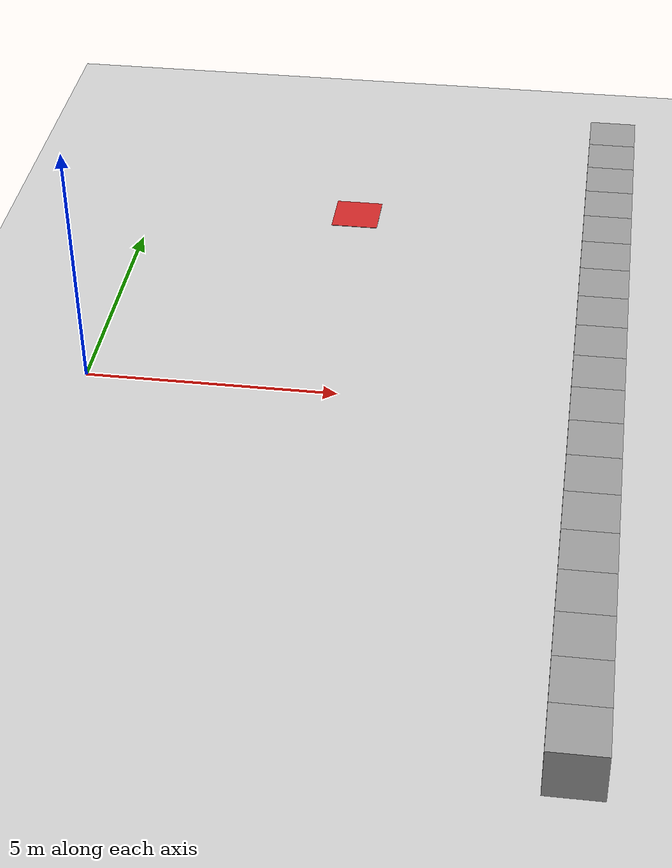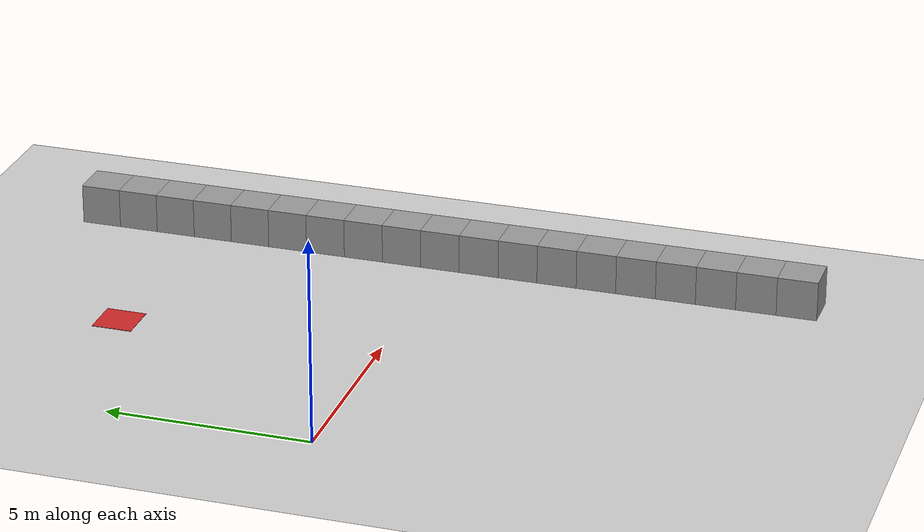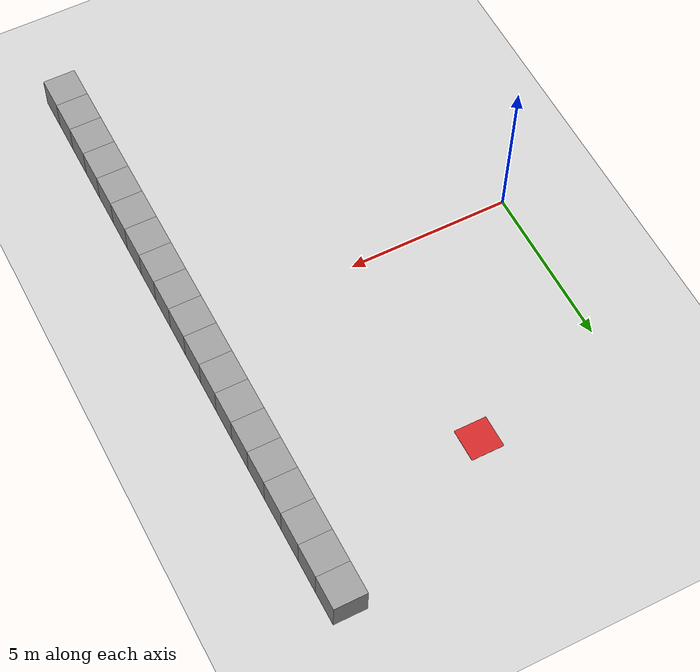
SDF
<sdf version="1.6">
 <world name="default">
  <model name="ground_plane">
   <static>1</static>
   <link name="link">
    <collision name="collision">
     <geometry><plane><normal>0 0 1</normal><size>100 100</size></plane></geometry>
     <surface><friction><ode><mu>100</mu><mu2>50</mu2></ode></friction></surface>
    </collision>
    <visual name="visual">
     <cast_shadows>0</cast_shadows>
     <geometry><plane><normal>0 0 1</normal><size>100 100</size></plane></geometry>
     <material>
      <script><uri>file://media/materials/scripts/gazebo.material</uri><name>Gazebo/Grey</name></script>
     </material>
    </visual>
   </link>
  </model>
  <model name="wall3_0">
   <link name="link">
    <inertial>
     <mass>1</mass>
     <inertia>
      <ixx>0.166667</ixx>
      <ixy>0</ixy>
      <ixz>0</ixz>
      <iyy>0.166667</iyy>
      <iyz>0</iyz>
      <izz>0.166667</izz>
     </inertia>
    </inertial>
    <visual name="visual">
     <geometry><box><size>1 1 1</size></box></geometry>
     <material>
      <script><name>Gazebo/Grey</name><uri>file://media/materials/scripts/gazebo.material</uri></script>
      <ambient>0.3 0.3 0.3 1</ambient>
      <diffuse>0.7 0.7 0.7 1</diffuse>
      <specular>0.01 0.01 0.01 1</specular>
      <emissive>0 0 0 1</emissive>
     </material>
    </visual>
    <collision name="collision">
     <geometry><box><size>1 1 1</size></box></geometry>
     <surface>
      <friction>
       <ode><mu>1</mu><mu2>1</mu2><fdir1>0 0 0</fdir1><slip1>0</slip1><slip2>0</slip2></ode>
       <torsional>
        <coefficient>1</coefficient>
        <patch_radius>0</patch_radius>
        <surface_radius>0</surface_radius>
        <use_patch_radius>1</use_patch_radius>
        <ode><slip>0</slip></ode>
       </torsional>
      </friction>
      <bounce><restitution_coefficient>0</restitution_coefficient><threshold>1e+06</threshold></bounce>
      <contact>
       <collide_without_contact>0</collide_without_contact>
       <collide_without_contact_bitmask>1</collide_without_contact_bitmask>
       <collide_bitmask>1</collide_bitmask>
       <ode>
        <soft_cfm>0</soft_cfm>
        <soft_erp>0.2</soft_erp>
        <kp>1e+13</kp>
        <kd>1</kd>
        <max_vel>0.01</max_vel>
        <min_depth>0</min_depth>
       </ode>
       <bullet>
        <split_impulse>1</split_impulse>
        <split_impulse_penetration_threshold>-0.01</split_impulse_penetration_threshold>
        <soft_cfm>0</soft_cfm>
        <soft_erp>0.2</soft_erp>
        <kp>1e+13</kp>
        <kd>1</kd>
       </bullet>
      </contact>
     </surface>
    </collision>
   </link>
   <link name="link_10">
    <pose>0 -4 0 0 -0 0</pose>
    <inertial>
     <mass>1</mass>
     <inertia>
      <ixx>0.166667</ixx>
      <ixy>0</ixy>
      <ixz>0</ixz>
      <iyy>0.166667</iyy>
      <iyz>0</iyz>
      <izz>0.166667</izz>
     </inertia>
    </inertial>
    <visual name="visual">
     <geometry><box><size>1 1 1</size></box></geometry>
     <material>
      <lighting>1</lighting>
      <script><uri>file://media/materials/scripts/gazebo.material</uri><name>Gazebo/Grey</name></script>
      <ambient>0.3 0.3 0.3 1</ambient>
      <diffuse>0.7 0.7 0.7 1</diffuse>
      <specular>0.01 0.01 0.01 1</specular>
      <emissive>0 0 0 1</emissive>
     </material>
    </visual>
    <collision name="collision">
     <geometry><box><size>1 1 1</size></box></geometry>
     <surface>
      <friction>
       <ode><mu>1</mu><mu2>1</mu2><fdir1>0 0 0</fdir1><slip1>0</slip1><slip2>0</slip2></ode>
       <torsional>
        <coefficient>1</coefficient>
        <patch_radius>0</patch_radius>
        <surface_radius>0</surface_radius>
        <use_patch_radius>1</use_patch_radius>
        <ode><slip>0</slip></ode>
       </torsional>
      </friction>
      <bounce><restitution_coefficient>0</restitution_coefficient><threshold>1e+06</threshold></bounce>
      <contact>
       <collide_without_contact>0</collide_without_contact>
       <collide_without_contact_bitmask>1</collide_without_contact_bitmask>
       <collide_bitmask>1</collide_bitmask>
       <ode>
        <soft_cfm>0</soft_cfm>
        <soft_erp>0.2</soft_erp>
        <kp>1e+13</kp>
        <kd>1</kd>
        <max_vel>0.01</max_vel>
        <min_depth>0</min_depth>
       </ode>
       <bullet>
        <split_impulse>1</split_impulse>
        <split_impulse_penetration_threshold>-0.01</split_impulse_penetration_threshold>
        <soft_cfm>0</soft_cfm>
        <soft_erp>0.2</soft_erp>
        <kp>1e+13</kp>
        <kd>1</kd>
       </bullet>
      </contact>
     </surface>
    </collision>
   </link>
   <link name="link_11">
    <pose>0 -5 0 0 -0 0</pose>
    <inertial>
     <mass>1</mass>
     <inertia>
      <ixx>0.166667</ixx>
      <ixy>0</ixy>
      <ixz>0</ixz>
      <iyy>0.166667</iyy>
      <iyz>0</iyz>
      <izz>0.166667</izz>
     </inertia>
    </inertial>
    <visual name="visual">
     <geometry><box><size>1 1 1</size></box></geometry>
     <material>
      <lighting>1</lighting>
      <script><uri>file://media/materials/scripts/gazebo.material</uri><name>Gazebo/Grey</name></script>
      <ambient>0.3 0.3 0.3 1</ambient>
      <diffuse>0.7 0.7 0.7 1</diffuse>
      <specular>0.01 0.01 0.01 1</specular>
      <emissive>0 0 0 1</emissive>
     </material>
    </visual>
    <collision name="collision">
     <geometry><box><size>1 1 1</size></box></geometry>
     <surface>
      <friction>
       <ode><mu>1</mu><mu2>1</mu2><fdir1>0 0 0</fdir1><slip1>0</slip1><slip2>0</slip2></ode>
       <torsional>
        <coefficient>1</coefficient>
        <patch_radius>0</patch_radius>
        <surface_radius>0</surface_radius>
        <use_patch_radius>1</use_patch_radius>
        <ode><slip>0</slip></ode>
       </torsional>
      </friction>
      <bounce><restitution_coefficient>0</restitution_coefficient><threshold>1e+06</threshold></bounce>
      <contact>
       <collide_without_contact>0</collide_without_contact>
       <collide_without_contact_bitmask>1</collide_without_contact_bitmask>
       <collide_bitmask>1</collide_bitmask>
       <ode>
        <soft_cfm>0</soft_cfm>
        <soft_erp>0.2</soft_erp>
        <kp>1e+13</kp>
        <kd>1</kd>
        <max_vel>0.01</max_vel>
        <min_depth>0</min_depth>
       </ode>
       <bullet>
        <split_impulse>1</split_impulse>
        <split_impulse_penetration_threshold>-0.01</split_impulse_penetration_threshold>
        <soft_cfm>0</soft_cfm>
        <soft_erp>0.2</soft_erp>
        <kp>1e+13</kp>
        <kd>1</kd>
       </bullet>
      </contact>
     </surface>
    </collision>
   </link>
   <link name="link_12">
    <pose>0 -6 0 0 -0 0</pose>
    <inertial>
     <mass>1</mass>
     <inertia>
      <ixx>0.166667</ixx>
      <ixy>0</ixy>
      <ixz>0</ixz>
      <iyy>0.166667</iyy>
      <iyz>0</iyz>
      <izz>0.166667</izz>
     </inertia>
    </inertial>
    <visual name="visual">
     <geometry><box><size>1 1 1</size></box></geometry>
     <material>
      <lighting>1</lighting>
      <script><uri>file://media/materials/scripts/gazebo.material</uri><name>Gazebo/Grey</name></script>
      <ambient>0.3 0.3 0.3 1</ambient>
      <diffuse>0.7 0.7 0.7 1</diffuse>
      <specular>0.01 0.01 0.01 1</specular>
      <emissive>0 0 0 1</emissive>
     </material>
    </visual>
    <collision name="collision">
     <geometry><box><size>1 1 1</size></box></geometry>
     <surface>
      <friction>
       <ode><mu>1</mu><mu2>1</mu2><fdir1>0 0 0</fdir1><slip1>0</slip1><slip2>0</slip2></ode>
       <torsional>
        <coefficient>1</coefficient>
        <patch_radius>0</patch_radius>
        <surface_radius>0</surface_radius>
        <use_patch_radius>1</use_patch_radius>
        <ode><slip>0</slip></ode>
       </torsional>
      </friction>
      <bounce><restitution_coefficient>0</restitution_coefficient><threshold>1e+06</threshold></bounce>
      <contact>
       <collide_without_contact>0</collide_without_contact>
       <collide_without_contact_bitmask>1</collide_without_contact_bitmask>
       <collide_bitmask>1</collide_bitmask>
       <ode>
        <soft_cfm>0</soft_cfm>
        <soft_erp>0.2</soft_erp>
        <kp>1e+13</kp>
        <kd>1</kd>
        <max_vel>0.01</max_vel>
        <min_depth>0</min_depth>
       </ode>
       <bullet>
        <split_impulse>1</split_impulse>
        <split_impulse_penetration_threshold>-0.01</split_impulse_penetration_threshold>
        <soft_cfm>0</soft_cfm>
        <soft_erp>0.2</soft_erp>
        <kp>1e+13</kp>
        <kd>1</kd>
       </bullet>
      </contact>
     </surface>
    </collision>
   </link>
   <link name="link_13">
    <pose>0 -7 0 0 -0 0</pose>
    <inertial>
     <mass>1</mass>
     <inertia>
      <ixx>0.166667</ixx>
      <ixy>0</ixy>
      <ixz>0</ixz>
      <iyy>0.166667</iyy>
      <iyz>0</iyz>
      <izz>0.166667</izz>
     </inertia>
    </inertial>
    <visual name="visual">
     <geometry><box><size>1 1 1</size></box></geometry>
     <material>
      <lighting>1</lighting>
      <script><uri>file://media/materials/scripts/gazebo.material</uri><name>Gazebo/Grey</name></script>
      <ambient>0.3 0.3 0.3 1</ambient>
      <diffuse>0.7 0.7 0.7 1</diffuse>
      <specular>0.01 0.01 0.01 1</specular>
      <emissive>0 0 0 1</emissive>
     </material>
    </visual>
    <collision name="collision">
     <geometry><box><size>1 1 1</size></box></geometry>
     <surface>
      <friction>
       <ode><mu>1</mu><mu2>1</mu2><fdir1>0 0 0</fdir1><slip1>0</slip1><slip2>0</slip2></ode>
       <torsional>
        <coefficient>1</coefficient>
        <patch_radius>0</patch_radius>
        <surface_radius>0</surface_radius>
        <use_patch_radius>1</use_patch_radius>
        <ode><slip>0</slip></ode>
       </torsional>
      </friction>
      <bounce><restitution_coefficient>0</restitution_coefficient><threshold>1e+06</threshold></bounce>
      <contact>
       <collide_without_contact>0</collide_without_contact>
       <collide_without_contact_bitmask>1</collide_without_contact_bitmask>
       <collide_bitmask>1</collide_bitmask>
       <ode>
        <soft_cfm>0</soft_cfm>
        <soft_erp>0.2</soft_erp>
        <kp>1e+13</kp>
        <kd>1</kd>
        <max_vel>0.01</max_vel>
        <min_depth>0</min_depth>
       </ode>
       <bullet>
        <split_impulse>1</split_impulse>
        <split_impulse_penetration_threshold>-0.01</split_impulse_penetration_threshold>
        <soft_cfm>0</soft_cfm>
        <soft_erp>0.2</soft_erp>
        <kp>1e+13</kp>
        <kd>1</kd>
       </bullet>
      </contact>
     </surface>
    </collision>
   </link>
   <link name="link_14">
    <pose>0 -8 0 0 -0 0</pose>
    <inertial>
     <mass>1</mass>
     <inertia>
      <ixx>0.166667</ixx>
      <ixy>0</ixy>
      <ixz>0</ixz>
      <iyy>0.166667</iyy>
      <iyz>0</iyz>
      <izz>0.166667</izz>
     </inertia>
    </inertial>
    <visual name="visual">
     <geometry><box><size>1 1 1</size></box></geometry>
     <material>
      <lighting>1</lighting>
      <script><uri>file://media/materials/scripts/gazebo.material</uri><name>Gazebo/Grey</name></script>
      <ambient>0.3 0.3 0.3 1</ambient>
      <diffuse>0.7 0.7 0.7 1</diffuse>
      <specular>0.01 0.01 0.01 1</specular>
      <emissive>0 0 0 1</emissive>
     </material>
    </visual>
    <collision name="collision">
     <geometry><box><size>1 1 1</size></box></geometry>
     <surface>
      <friction>
       <ode><mu>1</mu><mu2>1</mu2><fdir1>0 0 0</fdir1><slip1>0</slip1><slip2>0</slip2></ode>
       <torsional>
        <coefficient>1</coefficient>
        <patch_radius>0</patch_radius>
        <surface_radius>0</surface_radius>
        <use_patch_radius>1</use_patch_radius>
        <ode><slip>0</slip></ode>
       </torsional>
      </friction>
      <bounce><restitution_coefficient>0</restitution_coefficient><threshold>1e+06</threshold></bounce>
      <contact>
       <collide_without_contact>0</collide_without_contact>
       <collide_without_contact_bitmask>1</collide_without_contact_bitmask>
       <collide_bitmask>1</collide_bitmask>
       <ode>
        <soft_cfm>0</soft_cfm>
        <soft_erp>0.2</soft_erp>
        <kp>1e+13</kp>
        <kd>1</kd>
        <max_vel>0.01</max_vel>
        <min_depth>0</min_depth>
       </ode>
       <bullet>
        <split_impulse>1</split_impulse>
        <split_impulse_penetration_threshold>-0.01</split_impulse_penetration_threshold>
        <soft_cfm>0</soft_cfm>
        <soft_erp>0.2</soft_erp>
        <kp>1e+13</kp>
        <kd>1</kd>
       </bullet>
      </contact>
     </surface>
    </collision>
   </link>
   <link name="link_15">
    <pose>0 1 0 0 -0 0</pose>
    <inertial>
     <mass>1</mass>
     <inertia>
      <ixx>0.166667</ixx>
      <ixy>0</ixy>
      <ixz>0</ixz>
      <iyy>0.166667</iyy>
      <iyz>0</iyz>
      <izz>0.166667</izz>
     </inertia>
    </inertial>
    <visual name="visual">
     <geometry><box><size>1 1 1</size></box></geometry>
     <material>
      <lighting>1</lighting>
      <script><uri>file://media/materials/scripts/gazebo.material</uri><name>Gazebo/Grey</name></script>
      <ambient>0.3 0.3 0.3 1</ambient>
      <diffuse>0.7 0.7 0.7 1</diffuse>
      <specular>0.01 0.01 0.01 1</specular>
      <emissive>0 0 0 1</emissive>
     </material>
    </visual>
    <collision name="collision">
     <geometry><box><size>1 1 1</size></box></geometry>
     <surface>
      <friction>
       <ode><mu>1</mu><mu2>1</mu2><fdir1>0 0 0</fdir1><slip1>0</slip1><slip2>0</slip2></ode>
       <torsional>
        <coefficient>1</coefficient>
        <patch_radius>0</patch_radius>
        <surface_radius>0</surface_radius>
        <use_patch_radius>1</use_patch_radius>
        <ode><slip>0</slip></ode>
       </torsional>
      </friction>
      <bounce><restitution_coefficient>0</restitution_coefficient><threshold>1e+06</threshold></bounce>
      <contact>
       <collide_without_contact>0</collide_without_contact>
       <collide_without_contact_bitmask>1</collide_without_contact_bitmask>
       <collide_bitmask>1</collide_bitmask>
       <ode>
        <soft_cfm>0</soft_cfm>
        <soft_erp>0.2</soft_erp>
        <kp>1e+13</kp>
        <kd>1</kd>
        <max_vel>0.01</max_vel>
        <min_depth>0</min_depth>
       </ode>
       <bullet>
        <split_impulse>1</split_impulse>
        <split_impulse_penetration_threshold>-0.01</split_impulse_penetration_threshold>
        <soft_cfm>0</soft_cfm>
        <soft_erp>0.2</soft_erp>
        <kp>1e+13</kp>
        <kd>1</kd>
       </bullet>
      </contact>
     </surface>
    </collision>
   </link>
   <link name="link_16">
    <pose>0 2 0 0 -0 0</pose>
    <inertial>
     <mass>1</mass>
     <inertia>
      <ixx>0.166667</ixx>
      <ixy>0</ixy>
      <ixz>0</ixz>
      <iyy>0.166667</iyy>
      <iyz>0</iyz>
      <izz>0.166667</izz>
     </inertia>
    </inertial>
    <visual name="visual">
     <geometry><box><size>1 1 1</size></box></geometry>
     <material>
      <lighting>1</lighting>
      <script><uri>file://media/materials/scripts/gazebo.material</uri><name>Gazebo/Grey</name></script>
      <ambient>0.3 0.3 0.3 1</ambient>
      <diffuse>0.7 0.7 0.7 1</diffuse>
      <specular>0.01 0.01 0.01 1</specular>
      <emissive>0 0 0 1</emissive>
     </material>
    </visual>
    <collision name="collision">
     <geometry><box><size>1 1 1</size></box></geometry>
     <surface>
      <friction>
       <ode><mu>1</mu><mu2>1</mu2><fdir1>0 0 0</fdir1><slip1>0</slip1><slip2>0</slip2></ode>
       <torsional>
        <coefficient>1</coefficient>
        <patch_radius>0</patch_radius>
        <surface_radius>0</surface_radius>
        <use_patch_radius>1</use_patch_radius>
        <ode><slip>0</slip></ode>
       </torsional>
      </friction>
      <bounce><restitution_coefficient>0</restitution_coefficient><threshold>1e+06</threshold></bounce>
      <contact>
       <collide_without_contact>0</collide_without_contact>
       <collide_without_contact_bitmask>1</collide_without_contact_bitmask>
       <collide_bitmask>1</collide_bitmask>
       <ode>
        <soft_cfm>0</soft_cfm>
        <soft_erp>0.2</soft_erp>
        <kp>1e+13</kp>
        <kd>1</kd>
        <max_vel>0.01</max_vel>
        <min_depth>0</min_depth>
       </ode>
       <bullet>
        <split_impulse>1</split_impulse>
        <split_impulse_penetration_threshold>-0.01</split_impulse_penetration_threshold>
        <soft_cfm>0</soft_cfm>
        <soft_erp>0.2</soft_erp>
        <kp>1e+13</kp>
        <kd>1</kd>
       </bullet>
      </contact>
     </surface>
    </collision>
   </link>
   <link name="link_17">
    <pose>0 3 0 0 -0 0</pose>
    <inertial>
     <mass>1</mass>
     <inertia>
      <ixx>0.166667</ixx>
      <ixy>0</ixy>
      <ixz>0</ixz>
      <iyy>0.166667</iyy>
      <iyz>0</iyz>
      <izz>0.166667</izz>
     </inertia>
    </inertial>
    <visual name="visual">
     <geometry><box><size>1 1 1</size></box></geometry>
     <material>
      <lighting>1</lighting>
      <script><uri>file://media/materials/scripts/gazebo.material</uri><name>Gazebo/Grey</name></script>
      <ambient>0.3 0.3 0.3 1</ambient>
      <diffuse>0.7 0.7 0.7 1</diffuse>
      <specular>0.01 0.01 0.01 1</specular>
      <emissive>0 0 0 1</emissive>
     </material>
    </visual>
    <collision name="collision">
     <geometry><box><size>1 1 1</size></box></geometry>
     <surface>
      <friction>
       <ode><mu>1</mu><mu2>1</mu2><fdir1>0 0 0</fdir1><slip1>0</slip1><slip2>0</slip2></ode>
       <torsional>
        <coefficient>1</coefficient>
        <patch_radius>0</patch_radius>
        <surface_radius>0</surface_radius>
        <use_patch_radius>1</use_patch_radius>
        <ode><slip>0</slip></ode>
       </torsional>
      </friction>
      <bounce><restitution_coefficient>0</restitution_coefficient><threshold>1e+06</threshold></bounce>
      <contact>
       <collide_without_contact>0</collide_without_contact>
       <collide_without_contact_bitmask>1</collide_without_contact_bitmask>
       <collide_bitmask>1</collide_bitmask>
       <ode>
        <soft_cfm>0</soft_cfm>
        <soft_erp>0.2</soft_erp>
        <kp>1e+13</kp>
        <kd>1</kd>
        <max_vel>0.01</max_vel>
        <min_depth>0</min_depth>
       </ode>
       <bullet>
        <split_impulse>1</split_impulse>
        <split_impulse_penetration_threshold>-0.01</split_impulse_penetration_threshold>
        <soft_cfm>0</soft_cfm>
        <soft_erp>0.2</soft_erp>
        <kp>1e+13</kp>
        <kd>1</kd>
       </bullet>
      </contact>
     </surface>
    </collision>
   </link>
   <link name="link_18">
    <pose>0 4 0 0 -0 0</pose>
    <inertial>
     <mass>1</mass>
     <inertia>
      <ixx>0.166667</ixx>
      <ixy>0</ixy>
      <ixz>0</ixz>
      <iyy>0.166667</iyy>
      <iyz>0</iyz>
      <izz>0.166667</izz>
     </inertia>
    </inertial>
    <visual name="visual">
     <geometry><box><size>1 1 1</size></box></geometry>
     <material>
      <lighting>1</lighting>
      <script><uri>file://media/materials/scripts/gazebo.material</uri><name>Gazebo/Grey</name></script>
      <ambient>0.3 0.3 0.3 1</ambient>
      <diffuse>0.7 0.7 0.7 1</diffuse>
      <specular>0.01 0.01 0.01 1</specular>
      <emissive>0 0 0 1</emissive>
     </material>
    </visual>
    <collision name="collision">
     <geometry><box><size>1 1 1</size></box></geometry>
     <surface>
      <friction>
       <ode><mu>1</mu><mu2>1</mu2><fdir1>0 0 0</fdir1><slip1>0</slip1><slip2>0</slip2></ode>
       <torsional>
        <coefficient>1</coefficient>
        <patch_radius>0</patch_radius>
        <surface_radius>0</surface_radius>
        <use_patch_radius>1</use_patch_radius>
        <ode><slip>0</slip></ode>
       </torsional>
      </friction>
      <bounce><restitution_coefficient>0</restitution_coefficient><threshold>1e+06</threshold></bounce>
      <contact>
       <collide_without_contact>0</collide_without_contact>
       <collide_without_contact_bitmask>1</collide_without_contact_bitmask>
       <collide_bitmask>1</collide_bitmask>
       <ode>
        <soft_cfm>0</soft_cfm>
        <soft_erp>0.2</soft_erp>
        <kp>1e+13</kp>
        <kd>1</kd>
        <max_vel>0.01</max_vel>
        <min_depth>0</min_depth>
       </ode>
       <bullet>
        <split_impulse>1</split_impulse>
        <split_impulse_penetration_threshold>-0.01</split_impulse_penetration_threshold>
        <soft_cfm>0</soft_cfm>
        <soft_erp>0.2</soft_erp>
        <kp>1e+13</kp>
        <kd>1</kd>
       </bullet>
      </contact>
     </surface>
    </collision>
   </link>
   <link name="link_19">
    <pose>0 5 0 0 -0 0</pose>
    <inertial>
     <mass>1</mass>
     <inertia>
      <ixx>0.166667</ixx>
      <ixy>0</ixy>
      <ixz>0</ixz>
      <iyy>0.166667</iyy>
      <iyz>0</iyz>
      <izz>0.166667</izz>
     </inertia>
    </inertial>
    <visual name="visual">
     <geometry><box><size>1 1 1</size></box></geometry>
     <material>
      <lighting>1</lighting>
      <script><uri>file://media/materials/scripts/gazebo.material</uri><name>Gazebo/Grey</name></script>
      <ambient>0.3 0.3 0.3 1</ambient>
      <diffuse>0.7 0.7 0.7 1</diffuse>
      <specular>0.01 0.01 0.01 1</specular>
      <emissive>0 0 0 1</emissive>
     </material>
    </visual>
    <collision name="collision">
     <geometry><box><size>1 1 1</size></box></geometry>
     <surface>
      <friction>
       <ode><mu>1</mu><mu2>1</mu2><fdir1>0 0 0</fdir1><slip1>0</slip1><slip2>0</slip2></ode>
       <torsional>
        <coefficient>1</coefficient>
        <patch_radius>0</patch_radius>
        <surface_radius>0</surface_radius>
        <use_patch_radius>1</use_patch_radius>
        <ode><slip>0</slip></ode>
       </torsional>
      </friction>
      <bounce><restitution_coefficient>0</restitution_coefficient><threshold>1e+06</threshold></bounce>
      <contact>
       <collide_without_contact>0</collide_without_contact>
       <collide_without_contact_bitmask>1</collide_without_contact_bitmask>
       <collide_bitmask>1</collide_bitmask>
       <ode>
        <soft_cfm>0</soft_cfm>
        <soft_erp>0.2</soft_erp>
        <kp>1e+13</kp>
        <kd>1</kd>
        <max_vel>0.01</max_vel>
        <min_depth>0</min_depth>
       </ode>
       <bullet>
        <split_impulse>1</split_impulse>
        <split_impulse_penetration_threshold>-0.01</split_impulse_penetration_threshold>
        <soft_cfm>0</soft_cfm>
        <soft_erp>0.2</soft_erp>
        <kp>1e+13</kp>
        <kd>1</kd>
       </bullet>
      </contact>
     </surface>
    </collision>
   </link>
   <link name="link_20">
    <pose>0 6 0 0 -0 0</pose>
    <inertial>
     <mass>1</mass>
     <inertia>
      <ixx>0.166667</ixx>
      <ixy>0</ixy>
      <ixz>0</ixz>
      <iyy>0.166667</iyy>
      <iyz>0</iyz>
      <izz>0.166667</izz>
     </inertia>
    </inertial>
    <visual name="visual">
     <geometry><box><size>1 1 1</size></box></geometry>
     <material>
      <lighting>1</lighting>
      <script><uri>file://media/materials/scripts/gazebo.material</uri><name>Gazebo/Grey</name></script>
      <ambient>0.3 0.3 0.3 1</ambient>
      <diffuse>0.7 0.7 0.7 1</diffuse>
      <specular>0.01 0.01 0.01 1</specular>
      <emissive>0 0 0 1</emissive>
     </material>
    </visual>
    <collision name="collision">
     <geometry><box><size>1 1 1</size></box></geometry>
     <surface>
      <friction>
       <ode><mu>1</mu><mu2>1</mu2><fdir1>0 0 0</fdir1><slip1>0</slip1><slip2>0</slip2></ode>
       <torsional>
        <coefficient>1</coefficient>
        <patch_radius>0</patch_radius>
        <surface_radius>0</surface_radius>
        <use_patch_radius>1</use_patch_radius>
        <ode><slip>0</slip></ode>
       </torsional>
      </friction>
      <bounce><restitution_coefficient>0</restitution_coefficient><threshold>1e+06</threshold></bounce>
      <contact>
       <collide_without_contact>0</collide_without_contact>
       <collide_without_contact_bitmask>1</collide_without_contact_bitmask>
       <collide_bitmask>1</collide_bitmask>
       <ode>
        <soft_cfm>0</soft_cfm>
        <soft_erp>0.2</soft_erp>
        <kp>1e+13</kp>
        <kd>1</kd>
        <max_vel>0.01</max_vel>
        <min_depth>0</min_depth>
       </ode>
       <bullet>
        <split_impulse>1</split_impulse>
        <split_impulse_penetration_threshold>-0.01</split_impulse_penetration_threshold>
        <soft_cfm>0</soft_cfm>
        <soft_erp>0.2</soft_erp>
        <kp>1e+13</kp>
        <kd>1</kd>
       </bullet>
      </contact>
     </surface>
    </collision>
   </link>
   <link name="link_21">
    <pose>0 7 0 0 -0 0</pose>
    <inertial>
     <mass>1</mass>
     <inertia>
      <ixx>0.166667</ixx>
      <ixy>0</ixy>
      <ixz>0</ixz>
      <iyy>0.166667</iyy>
      <iyz>0</iyz>
      <izz>0.166667</izz>
     </inertia>
    </inertial>
    <visual name="visual">
     <geometry><box><size>1 1 1</size></box></geometry>
     <material>
      <lighting>1</lighting>
      <script><uri>file://media/materials/scripts/gazebo.material</uri><name>Gazebo/Grey</name></script>
      <ambient>0.3 0.3 0.3 1</ambient>
      <diffuse>0.7 0.7 0.7 1</diffuse>
      <specular>0.01 0.01 0.01 1</specular>
      <emissive>0 0 0 1</emissive>
     </material>
    </visual>
    <collision name="collision">
     <geometry><box><size>1 1 1</size></box></geometry>
     <surface>
      <friction>
       <ode><mu>1</mu><mu2>1</mu2><fdir1>0 0 0</fdir1><slip1>0</slip1><slip2>0</slip2></ode>
       <torsional>
        <coefficient>1</coefficient>
        <patch_radius>0</patch_radius>
        <surface_radius>0</surface_radius>
        <use_patch_radius>1</use_patch_radius>
        <ode><slip>0</slip></ode>
       </torsional>
      </friction>
      <bounce><restitution_coefficient>0</restitution_coefficient><threshold>1e+06</threshold></bounce>
      <contact>
       <collide_without_contact>0</collide_without_contact>
       <collide_without_contact_bitmask>1</collide_without_contact_bitmask>
       <collide_bitmask>1</collide_bitmask>
       <ode>
        <soft_cfm>0</soft_cfm>
        <soft_erp>0.2</soft_erp>
        <kp>1e+13</kp>
        <kd>1</kd>
        <max_vel>0.01</max_vel>
        <min_depth>0</min_depth>
       </ode>
       <bullet>
        <split_impulse>1</split_impulse>
        <split_impulse_penetration_threshold>-0.01</split_impulse_penetration_threshold>
        <soft_cfm>0</soft_cfm>
        <soft_erp>0.2</soft_erp>
        <kp>1e+13</kp>
        <kd>1</kd>
       </bullet>
      </contact>
     </surface>
    </collision>
   </link>
   <link name="link_22">
    <pose>0 8 0 0 -0 0</pose>
    <inertial>
     <mass>1</mass>
     <inertia>
      <ixx>0.166667</ixx>
      <ixy>0</ixy>
      <ixz>0</ixz>
      <iyy>0.166667</iyy>
      <iyz>0</iyz>
      <izz>0.166667</izz>
     </inertia>
    </inertial>
    <visual name="visual">
     <geometry><box><size>1 1 1</size></box></geometry>
     <material>
      <lighting>1</lighting>
      <script><uri>file://media/materials/scripts/gazebo.material</uri><name>Gazebo/Grey</name></script>
      <ambient>0.3 0.3 0.3 1</ambient>
      <diffuse>0.7 0.7 0.7 1</diffuse>
      <specular>0.01 0.01 0.01 1</specular>
      <emissive>0 0 0 1</emissive>
     </material>
    </visual>
    <collision name="collision">
     <geometry><box><size>1 1 1</size></box></geometry>
     <surface>
      <friction>
       <ode><mu>1</mu><mu2>1</mu2><fdir1>0 0 0</fdir1><slip1>0</slip1><slip2>0</slip2></ode>
       <torsional>
        <coefficient>1</coefficient>
        <patch_radius>0</patch_radius>
        <surface_radius>0</surface_radius>
        <use_patch_radius>1</use_patch_radius>
        <ode><slip>0</slip></ode>
       </torsional>
      </friction>
      <bounce><restitution_coefficient>0</restitution_coefficient><threshold>1e+06</threshold></bounce>
      <contact>
       <collide_without_contact>0</collide_without_contact>
       <collide_without_contact_bitmask>1</collide_without_contact_bitmask>
       <collide_bitmask>1</collide_bitmask>
       <ode>
        <soft_cfm>0</soft_cfm>
        <soft_erp>0.2</soft_erp>
        <kp>1e+13</kp>
        <kd>1</kd>
        <max_vel>0.01</max_vel>
        <min_depth>0</min_depth>
       </ode>
       <bullet>
        <split_impulse>1</split_impulse>
        <split_impulse_penetration_threshold>-0.01</split_impulse_penetration_threshold>
        <soft_cfm>0</soft_cfm>
        <soft_erp>0.2</soft_erp>
        <kp>1e+13</kp>
        <kd>1</kd>
       </bullet>
      </contact>
     </surface>
    </collision>
   </link>
   <link name="link_23">
    <pose>0 9 0 0 -0 0</pose>
    <inertial>
     <mass>1</mass>
     <inertia>
      <ixx>0.166667</ixx>
      <ixy>0</ixy>
      <ixz>0</ixz>
      <iyy>0.166667</iyy>
      <iyz>0</iyz>
      <izz>0.166667</izz>
     </inertia>
    </inertial>
    <visual name="visual">
     <geometry><box><size>1 1 1</size></box></geometry>
     <material>
      <lighting>1</lighting>
      <script><uri>file://media/materials/scripts/gazebo.material</uri><name>Gazebo/Grey</name></script>
      <ambient>0.3 0.3 0.3 1</ambient>
      <diffuse>0.7 0.7 0.7 1</diffuse>
      <specular>0.01 0.01 0.01 1</specular>
      <emissive>0 0 0 1</emissive>
     </material>
    </visual>
    <collision name="collision">
     <geometry><box><size>1 1 1</size></box></geometry>
     <surface>
      <friction>
       <ode><mu>1</mu><mu2>1</mu2><fdir1>0 0 0</fdir1><slip1>0</slip1><slip2>0</slip2></ode>
       <torsional>
        <coefficient>1</coefficient>
        <patch_radius>0</patch_radius>
        <surface_radius>0</surface_radius>
        <use_patch_radius>1</use_patch_radius>
        <ode><slip>0</slip></ode>
       </torsional>
      </friction>
      <bounce><restitution_coefficient>0</restitution_coefficient><threshold>1e+06</threshold></bounce>
      <contact>
       <collide_without_contact>0</collide_without_contact>
       <collide_without_contact_bitmask>1</collide_without_contact_bitmask>
       <collide_bitmask>1</collide_bitmask>
       <ode>
        <soft_cfm>0</soft_cfm>
        <soft_erp>0.2</soft_erp>
        <kp>1e+13</kp>
        <kd>1</kd>
        <max_vel>0.01</max_vel>
        <min_depth>0</min_depth>
       </ode>
       <bullet>
        <split_impulse>1</split_impulse>
        <split_impulse_penetration_threshold>-0.01</split_impulse_penetration_threshold>
        <soft_cfm>0</soft_cfm>
        <soft_erp>0.2</soft_erp>
        <kp>1e+13</kp>
        <kd>1</kd>
       </bullet>
      </contact>
     </surface>
    </collision>
   </link>
   <link name="link_24">
    <pose>0 -9 0 0 -0 0</pose>
    <inertial>
     <mass>1</mass>
     <inertia>
      <ixx>0.166667</ixx>
      <ixy>0</ixy>
      <ixz>0</ixz>
      <iyy>0.166667</iyy>
      <iyz>0</iyz>
      <izz>0.166667</izz>
     </inertia>
    </inertial>
    <visual name="visual">
     <geometry><box><size>1 1 1</size></box></geometry>
     <material>
      <lighting>1</lighting>
      <script><uri>file://media/materials/scripts/gazebo.material</uri><name>Gazebo/Grey</name></script>
      <ambient>0.3 0.3 0.3 1</ambient>
      <diffuse>0.7 0.7 0.7 1</diffuse>
      <specular>0.01 0.01 0.01 1</specular>
      <emissive>0 0 0 1</emissive>
     </material>
    </visual>
    <collision name="collision">
     <geometry><box><size>1 1 1</size></box></geometry>
     <surface>
      <friction>
       <ode><mu>1</mu><mu2>1</mu2><fdir1>0 0 0</fdir1><slip1>0</slip1><slip2>0</slip2></ode>
       <torsional>
        <coefficient>1</coefficient>
        <patch_radius>0</patch_radius>
        <surface_radius>0</surface_radius>
        <use_patch_radius>1</use_patch_radius>
        <ode><slip>0</slip></ode>
       </torsional>
      </friction>
      <bounce><restitution_coefficient>0</restitution_coefficient><threshold>1e+06</threshold></bounce>
      <contact>
       <collide_without_contact>0</collide_without_contact>
       <collide_without_contact_bitmask>1</collide_without_contact_bitmask>
       <collide_bitmask>1</collide_bitmask>
       <ode>
        <soft_cfm>0</soft_cfm>
        <soft_erp>0.2</soft_erp>
        <kp>1e+13</kp>
        <kd>1</kd>
        <max_vel>0.01</max_vel>
        <min_depth>0</min_depth>
       </ode>
       <bullet>
        <split_impulse>1</split_impulse>
        <split_impulse_penetration_threshold>-0.01</split_impulse_penetration_threshold>
        <soft_cfm>0</soft_cfm>
        <soft_erp>0.2</soft_erp>
        <kp>1e+13</kp>
        <kd>1</kd>
       </bullet>
      </contact>
     </surface>
    </collision>
   </link>
   <link name="link_7">
    <pose>0 -1 0 0 -0 0</pose>
    <inertial>
     <mass>1</mass>
     <inertia>
      <ixx>0.166667</ixx>
      <ixy>0</ixy>
      <ixz>0</ixz>
      <iyy>0.166667</iyy>
      <iyz>0</iyz>
      <izz>0.166667</izz>
     </inertia>
    </inertial>
    <visual name="visual">
     <geometry><box><size>1 1 1</size></box></geometry>
     <material>
      <lighting>1</lighting>
      <script><uri>file://media/materials/scripts/gazebo.material</uri><name>Gazebo/Grey</name></script>
      <ambient>0.3 0.3 0.3 1</ambient>
      <diffuse>0.7 0.7 0.7 1</diffuse>
      <specular>0.01 0.01 0.01 1</specular>
      <emissive>0 0 0 1</emissive>
     </material>
    </visual>
    <collision name="collision">
     <geometry><box><size>1 1 1</size></box></geometry>
     <surface>
      <friction>
       <ode><mu>1</mu><mu2>1</mu2><fdir1>0 0 0</fdir1><slip1>0</slip1><slip2>0</slip2></ode>
       <torsional>
        <coefficient>1</coefficient>
        <patch_radius>0</patch_radius>
        <surface_radius>0</surface_radius>
        <use_patch_radius>1</use_patch_radius>
        <ode><slip>0</slip></ode>
       </torsional>
      </friction>
      <bounce><restitution_coefficient>0</restitution_coefficient><threshold>1e+06</threshold></bounce>
      <contact>
       <collide_without_contact>0</collide_without_contact>
       <collide_without_contact_bitmask>1</collide_without_contact_bitmask>
       <collide_bitmask>1</collide_bitmask>
       <ode>
        <soft_cfm>0</soft_cfm>
        <soft_erp>0.2</soft_erp>
        <kp>1e+13</kp>
        <kd>1</kd>
        <max_vel>0.01</max_vel>
        <min_depth>0</min_depth>
       </ode>
       <bullet>
        <split_impulse>1</split_impulse>
        <split_impulse_penetration_threshold>-0.01</split_impulse_penetration_threshold>
        <soft_cfm>0</soft_cfm>
        <soft_erp>0.2</soft_erp>
        <kp>1e+13</kp>
        <kd>1</kd>
       </bullet>
      </contact>
     </surface>
    </collision>
   </link>
   <link name="link_8">
    <pose>0 -2 0 0 -0 0</pose>
    <inertial>
     <mass>1</mass>
     <inertia>
      <ixx>0.166667</ixx>
      <ixy>0</ixy>
      <ixz>0</ixz>
      <iyy>0.166667</iyy>
      <iyz>0</iyz>
      <izz>0.166667</izz>
     </inertia>
    </inertial>
    <visual name="visual">
     <geometry><box><size>1 1 1</size></box></geometry>
     <material>
      <lighting>1</lighting>
      <script><uri>file://media/materials/scripts/gazebo.material</uri><name>Gazebo/Grey</name></script>
      <ambient>0.3 0.3 0.3 1</ambient>
      <diffuse>0.7 0.7 0.7 1</diffuse>
      <specular>0.01 0.01 0.01 1</specular>
      <emissive>0 0 0 1</emissive>
     </material>
    </visual>
    <collision name="collision">
     <geometry><box><size>1 1 1</size></box></geometry>
     <surface>
      <friction>
       <ode><mu>1</mu><mu2>1</mu2><fdir1>0 0 0</fdir1><slip1>0</slip1><slip2>0</slip2></ode>
       <torsional>
        <coefficient>1</coefficient>
        <patch_radius>0</patch_radius>
        <surface_radius>0</surface_radius>
        <use_patch_radius>1</use_patch_radius>
        <ode><slip>0</slip></ode>
       </torsional>
      </friction>
      <bounce><restitution_coefficient>0</restitution_coefficient><threshold>1e+06</threshold></bounce>
      <contact>
       <collide_without_contact>0</collide_without_contact>
       <collide_without_contact_bitmask>1</collide_without_contact_bitmask>
       <collide_bitmask>1</collide_bitmask>
       <ode>
        <soft_cfm>0</soft_cfm>
        <soft_erp>0.2</soft_erp>
        <kp>1e+13</kp>
        <kd>1</kd>
        <max_vel>0.01</max_vel>
        <min_depth>0</min_depth>
       </ode>
       <bullet>
        <split_impulse>1</split_impulse>
        <split_impulse_penetration_threshold>-0.01</split_impulse_penetration_threshold>
        <soft_cfm>0</soft_cfm>
        <soft_erp>0.2</soft_erp>
        <kp>1e+13</kp>
        <kd>1</kd>
       </bullet>
      </contact>
     </surface>
    </collision>
   </link>
   <link name="link_9">
    <pose>0 -3 0 0 -0 0</pose>
    <inertial>
     <mass>1</mass>
     <inertia>
      <ixx>0.166667</ixx>
      <ixy>0</ixy>
      <ixz>0</ixz>
      <iyy>0.166667</iyy>
      <iyz>0</iyz>
      <izz>0.166667</izz>
     </inertia>
    </inertial>
    <visual name="visual">
     <geometry><box><size>1 1 1</size></box></geometry>
     <material>
      <lighting>1</lighting>
      <script><uri>file://media/materials/scripts/gazebo.material</uri><name>Gazebo/Grey</name></script>
      <ambient>0.3 0.3 0.3 1</ambient>
      <diffuse>0.7 0.7 0.7 1</diffuse>
      <specular>0.01 0.01 0.01 1</specular>
      <emissive>0 0 0 1</emissive>
     </material>
    </visual>
    <collision name="collision">
     <geometry><box><size>1 1 1</size></box></geometry>
     <surface>
      <friction>
       <ode><mu>1</mu><mu2>1</mu2><fdir1>0 0 0</fdir1><slip1>0</slip1><slip2>0</slip2></ode>
       <torsional>
        <coefficient>1</coefficient>
        <patch_radius>0</patch_radius>
        <surface_radius>0</surface_radius>
        <use_patch_radius>1</use_patch_radius>
        <ode><slip>0</slip></ode>
       </torsional>
      </friction>
      <bounce><restitution_coefficient>0</restitution_coefficient><threshold>1e+06</threshold></bounce>
      <contact>
       <collide_without_contact>0</collide_without_contact>
       <collide_without_contact_bitmask>1</collide_without_contact_bitmask>
       <collide_bitmask>1</collide_bitmask>
       <ode>
        <soft_cfm>0</soft_cfm>
        <soft_erp>0.2</soft_erp>
        <kp>1e+13</kp>
        <kd>1</kd>
        <max_vel>0.01</max_vel>
        <min_depth>0</min_depth>
       </ode>
       <bullet>
        <split_impulse>1</split_impulse>
        <split_impulse_penetration_threshold>-0.01</split_impulse_penetration_threshold>
        <soft_cfm>0</soft_cfm>
        <soft_erp>0.2</soft_erp>
        <kp>1e+13</kp>
        <kd>1</kd>
       </bullet>
      </contact>
     </surface>
    </collision>
   </link>
   <static>0</static>
   <pose>10 0 0.5 0 -0 0</pose>
  </model>
  <model name="squre_pose_0_0">
   <link name="link">
    <inertial>
     <mass>1</mass>
     <inertia>
      <ixx>0.166667</ixx>
      <ixy>0</ixy>
      <ixz>0</ixz>
      <iyy>0.166667</iyy>
      <iyz>0</iyz>
      <izz>0.166667</izz>
     </inertia>
    </inertial>
    <visual name="visual">
     <geometry><box><size>1 1 0.01</size></box></geometry>
     <material>
      <script><name>Gazebo/Red</name><uri>file://media/materials/scripts/gazebo.material</uri></script>
      <ambient>1 0 0 1</ambient>
      <diffuse>0.7 0.7 0.7 1</diffuse>
      <specular>0.01 0.01 0.01 1</specular>
      <emissive>0 0 0 1</emissive>
      <shader type="vertex"><normal_map>__default__</normal_map></shader>
     </material>
    </visual>
   </link>
   <static>1</static>
   <pose>4.5 6.5 0 0 -0 0</pose>
  </model>
 </world>
</sdf>
